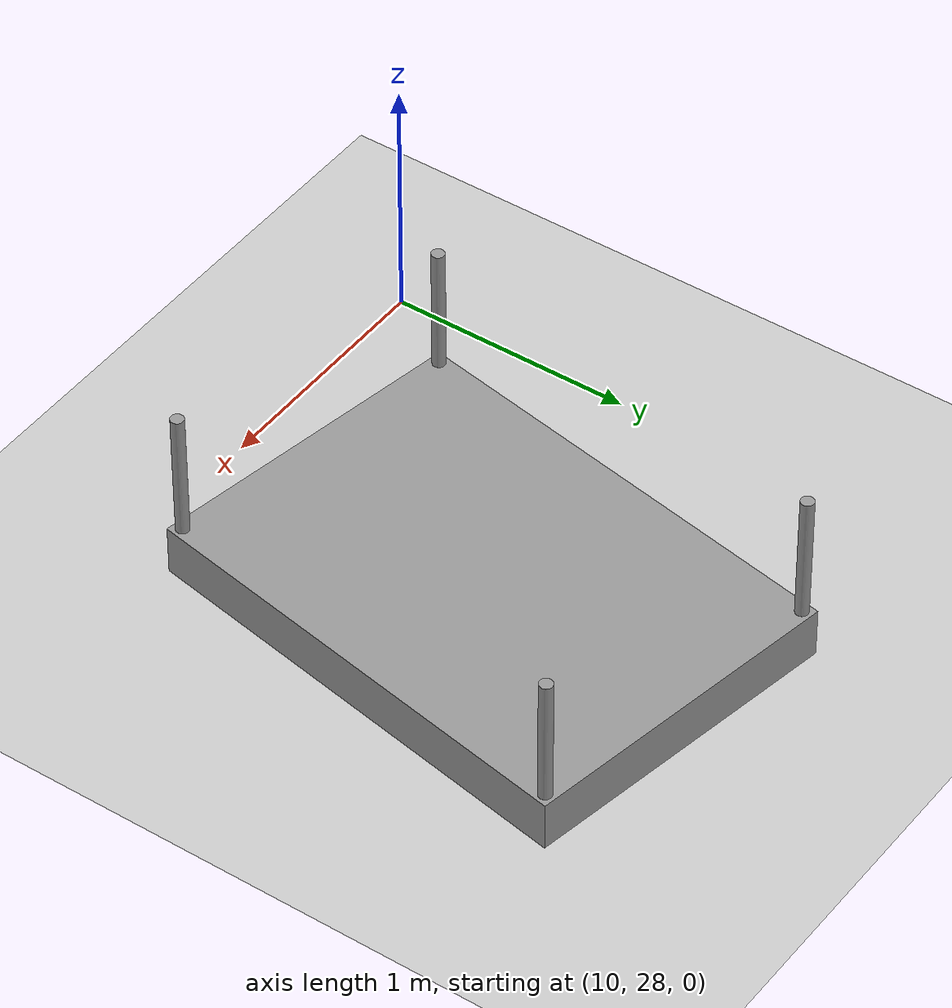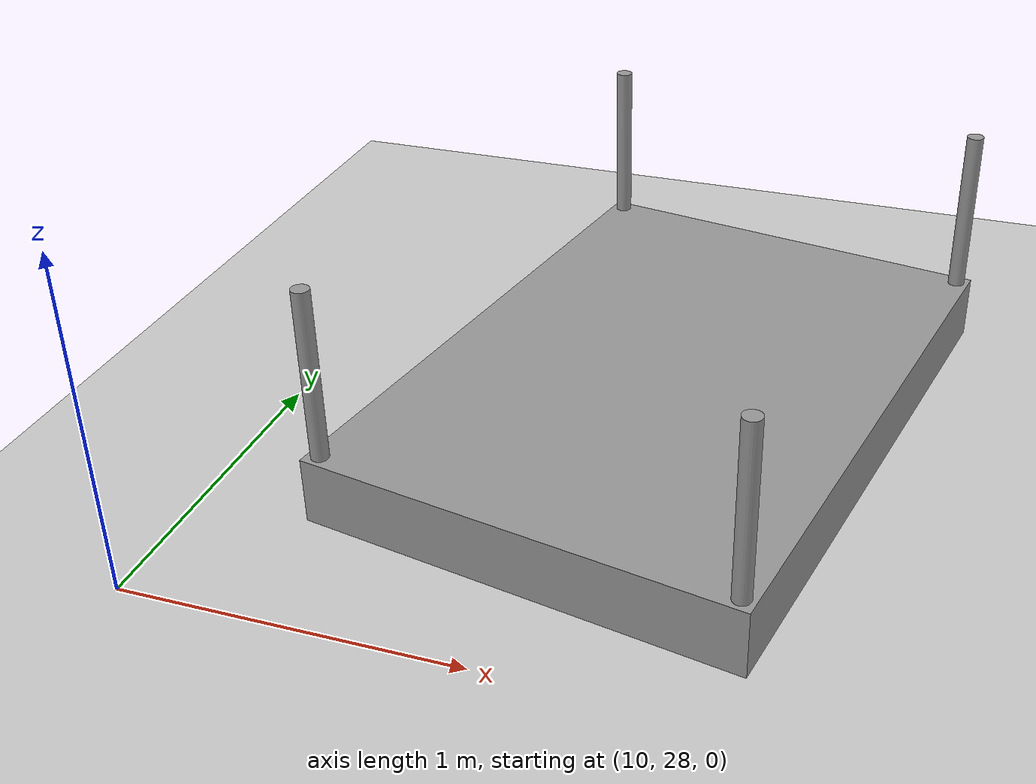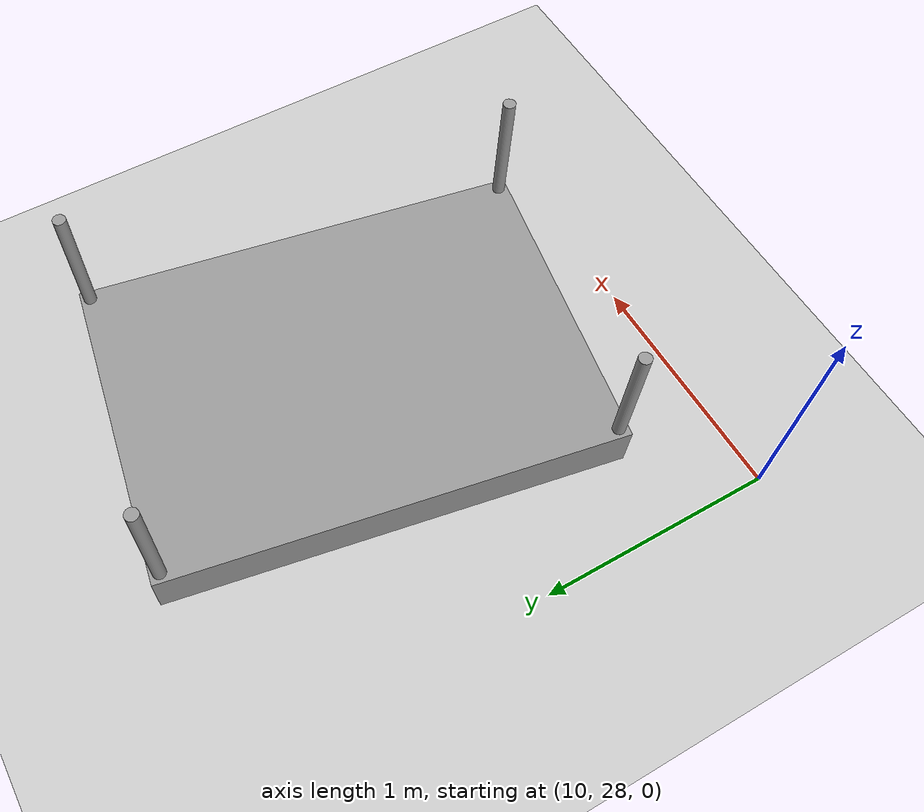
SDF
<sdf version="1.6">
 <world name="default">
  <model name="ground_plane">
   <static>1</static>
   <link name="link">
    <collision name="collision">
     <geometry><plane><normal>0 0 1</normal><size>100 100</size></plane></geometry>
     <surface>
      <contact><collide_bitmask>65535</collide_bitmask></contact>
      <friction><ode><mu>100</mu><mu2>50</mu2></ode></friction>
     </surface>
    </collision>
    <visual name="visual">
     <cast_shadows>0</cast_shadows>
     <geometry><plane><normal>0 0 1</normal><size>100 100</size></plane></geometry>
     <material>
      <script><uri>file://media/materials/scripts/gazebo.material</uri><name>Gazebo/Grey</name></script>
     </material>
    </visual>
   </link>
  </model>
  <model name="bed_clone_1">
   <link name="link_0">
    <pose>-0.152081 0.31625 0.061083 0 -0 0</pose>
    <inertial>
     <mass>1</mass>
     <inertia>
      <ixx>0.166667</ixx>
      <ixy>0</ixy>
      <ixz>0</ixz>
      <iyy>0.166667</iyy>
      <iyz>0</iyz>
      <izz>0.166667</izz>
     </inertia>
    </inertial>
    <visual name="visual">
     <geometry><box><size>1.905 1.345 0.205</size></box></geometry>
     <material>
      <lighting>1</lighting>
      <script><uri>file://media/materials/scripts/gazebo.material</uri><name>Gazebo/Grey</name></script>
      <shader type="pixel"><normal_map>__default__</normal_map></shader>
      <ambient>0.3 0.3 0.3 1</ambient>
      <diffuse>0.7 0.7 0.7 1</diffuse>
      <specular>0.01 0.01 0.01 1</specular>
      <emissive>0 0 0 1</emissive>
     </material>
    </visual>
    <collision name="collision">
     <geometry><box><size>1.905 1.345 0.205</size></box></geometry>
     <surface>
      <friction>
       <ode><mu>1</mu><mu2>1</mu2><fdir1>0 0 0</fdir1><slip1>0</slip1><slip2>0</slip2></ode>
       <torsional>
        <coefficient>1</coefficient>
        <patch_radius>0</patch_radius>
        <surface_radius>0</surface_radius>
        <use_patch_radius>1</use_patch_radius>
        <ode><slip>0</slip></ode>
       </torsional>
      </friction>
      <bounce><restitution_coefficient>0</restitution_coefficient><threshold>1e+06</threshold></bounce>
      <contact>
       <collide_without_contact>0</collide_without_contact>
       <collide_without_contact_bitmask>1</collide_without_contact_bitmask>
       <collide_bitmask>1</collide_bitmask>
       <ode>
        <soft_cfm>0</soft_cfm>
        <soft_erp>0.2</soft_erp>
        <kp>1e+13</kp>
        <kd>1</kd>
        <max_vel>0.01</max_vel>
        <min_depth>0</min_depth>
       </ode>
       <bullet>
        <split_impulse>1</split_impulse>
        <split_impulse_penetration_threshold>-0.01</split_impulse_penetration_threshold>
        <soft_cfm>0</soft_cfm>
        <soft_erp>0.2</soft_erp>
        <kp>1e+13</kp>
        <kd>1</kd>
       </bullet>
      </contact>
     </surface>
    </collision>
   </link>
   <link name="link_1">
    <pose>0.760419 0.94875 -0.305417 0 -0 0</pose>
    <inertial>
     <mass>1</mass>
     <inertia><ixx>0.145833</ixx><ixy>0</ixy><ixz>0</ixz><iyy>0.145833</iyy><iyz>0</iyz><izz>0.125</izz></inertia>
    </inertial>
    <visual name="visual">
     <geometry><cylinder><radius>0.026479</radius><length>0.528</length></cylinder></geometry>
     <material>
      <lighting>1</lighting>
      <script><uri>file://media/materials/scripts/gazebo.material</uri><name>Gazebo/Grey</name></script>
      <shader type="pixel"><normal_map>__default__</normal_map></shader>
      <ambient>0.3 0.3 0.3 1</ambient>
      <diffuse>0.7 0.7 0.7 1</diffuse>
      <specular>0.01 0.01 0.01 1</specular>
      <emissive>0 0 0 1</emissive>
     </material>
    </visual>
    <collision name="collision">
     <geometry><cylinder><radius>0.026479</radius><length>0.528</length></cylinder></geometry>
     <surface>
      <friction>
       <ode><mu>1</mu><mu2>1</mu2><fdir1>0 0 0</fdir1><slip1>0</slip1><slip2>0</slip2></ode>
       <torsional>
        <coefficient>1</coefficient>
        <patch_radius>0</patch_radius>
        <surface_radius>0</surface_radius>
        <use_patch_radius>1</use_patch_radius>
        <ode><slip>0</slip></ode>
       </torsional>
      </friction>
      <bounce><restitution_coefficient>0</restitution_coefficient><threshold>1e+06</threshold></bounce>
      <contact>
       <collide_without_contact>0</collide_without_contact>
       <collide_without_contact_bitmask>1</collide_without_contact_bitmask>
       <collide_bitmask>1</collide_bitmask>
       <ode>
        <soft_cfm>0</soft_cfm>
        <soft_erp>0.2</soft_erp>
        <kp>1e+13</kp>
        <kd>1</kd>
        <max_vel>0.01</max_vel>
        <min_depth>0</min_depth>
       </ode>
       <bullet>
        <split_impulse>1</split_impulse>
        <split_impulse_penetration_threshold>-0.01</split_impulse_penetration_threshold>
        <soft_cfm>0</soft_cfm>
        <soft_erp>0.2</soft_erp>
        <kp>1e+13</kp>
        <kd>1</kd>
       </bullet>
      </contact>
     </surface>
    </collision>
   </link>
   <link name="link_1_clone">
    <pose>0.760419 -0.31625 -0.305417 0 -0 0</pose>
    <inertial>
     <mass>1</mass>
     <inertia><ixx>0.145833</ixx><ixy>0</ixy><ixz>0</ixz><iyy>0.145833</iyy><iyz>0</iyz><izz>0.125</izz></inertia>
    </inertial>
    <visual name="visual">
     <geometry><cylinder><radius>0.026479</radius><length>0.528</length></cylinder></geometry>
     <material>
      <lighting>1</lighting>
      <script><uri>file://media/materials/scripts/gazebo.material</uri><name>Gazebo/Grey</name></script>
      <shader type="pixel"><normal_map>__default__</normal_map></shader>
      <ambient>0.3 0.3 0.3 1</ambient>
      <diffuse>0.7 0.7 0.7 1</diffuse>
      <specular>0.01 0.01 0.01 1</specular>
      <emissive>0 0 0 1</emissive>
     </material>
    </visual>
    <collision name="collision">
     <geometry><cylinder><radius>0.026479</radius><length>0.528</length></cylinder></geometry>
     <surface>
      <friction>
       <ode><mu>1</mu><mu2>1</mu2><fdir1>0 0 0</fdir1><slip1>0</slip1><slip2>0</slip2></ode>
       <torsional>
        <coefficient>1</coefficient>
        <patch_radius>0</patch_radius>
        <surface_radius>0</surface_radius>
        <use_patch_radius>1</use_patch_radius>
        <ode><slip>0</slip></ode>
       </torsional>
      </friction>
      <bounce><restitution_coefficient>0</restitution_coefficient><threshold>1e+06</threshold></bounce>
      <contact>
       <collide_without_contact>0</collide_without_contact>
       <collide_without_contact_bitmask>1</collide_without_contact_bitmask>
       <collide_bitmask>1</collide_bitmask>
       <ode>
        <soft_cfm>0</soft_cfm>
        <soft_erp>0.2</soft_erp>
        <kp>1e+13</kp>
        <kd>1</kd>
        <max_vel>0.01</max_vel>
        <min_depth>0</min_depth>
       </ode>
       <bullet>
        <split_impulse>1</split_impulse>
        <split_impulse_penetration_threshold>-0.01</split_impulse_penetration_threshold>
        <soft_cfm>0</soft_cfm>
        <soft_erp>0.2</soft_erp>
        <kp>1e+13</kp>
        <kd>1</kd>
       </bullet>
      </contact>
     </surface>
    </collision>
   </link>
   <link name="link_1_clone_clone">
    <pose>-1.06458 0.94875 -0.305417 0 -0 0</pose>
    <inertial>
     <mass>1</mass>
     <inertia><ixx>0.145833</ixx><ixy>0</ixy><ixz>0</ixz><iyy>0.145833</iyy><iyz>0</iyz><izz>0.125</izz></inertia>
    </inertial>
    <visual name="visual">
     <geometry><cylinder><radius>0.026479</radius><length>0.528</length></cylinder></geometry>
     <material>
      <lighting>1</lighting>
      <script><uri>file://media/materials/scripts/gazebo.material</uri><name>Gazebo/Grey</name></script>
      <shader type="pixel"><normal_map>__default__</normal_map></shader>
      <ambient>0.3 0.3 0.3 1</ambient>
      <diffuse>0.7 0.7 0.7 1</diffuse>
      <specular>0.01 0.01 0.01 1</specular>
      <emissive>0 0 0 1</emissive>
     </material>
    </visual>
    <collision name="collision">
     <geometry><cylinder><radius>0.026479</radius><length>0.528</length></cylinder></geometry>
     <surface>
      <friction>
       <ode><mu>1</mu><mu2>1</mu2><fdir1>0 0 0</fdir1><slip1>0</slip1><slip2>0</slip2></ode>
       <torsional>
        <coefficient>1</coefficient>
        <patch_radius>0</patch_radius>
        <surface_radius>0</surface_radius>
        <use_patch_radius>1</use_patch_radius>
        <ode><slip>0</slip></ode>
       </torsional>
      </friction>
      <bounce><restitution_coefficient>0</restitution_coefficient><threshold>1e+06</threshold></bounce>
      <contact>
       <collide_without_contact>0</collide_without_contact>
       <collide_without_contact_bitmask>1</collide_without_contact_bitmask>
       <collide_bitmask>1</collide_bitmask>
       <ode>
        <soft_cfm>0</soft_cfm>
        <soft_erp>0.2</soft_erp>
        <kp>1e+13</kp>
        <kd>1</kd>
        <max_vel>0.01</max_vel>
        <min_depth>0</min_depth>
       </ode>
       <bullet>
        <split_impulse>1</split_impulse>
        <split_impulse_penetration_threshold>-0.01</split_impulse_penetration_threshold>
        <soft_cfm>0</soft_cfm>
        <soft_erp>0.2</soft_erp>
        <kp>1e+13</kp>
        <kd>1</kd>
       </bullet>
      </contact>
     </surface>
    </collision>
   </link>
   <link name="link_1_clone_clone_clone">
    <pose>-1.06458 -0.31625 -0.305417 0 -0 0</pose>
    <inertial>
     <mass>1</mass>
     <inertia><ixx>0.145833</ixx><ixy>0</ixy><ixz>0</ixz><iyy>0.145833</iyy><iyz>0</iyz><izz>0.125</izz></inertia>
    </inertial>
    <visual name="visual">
     <geometry><cylinder><radius>0.026479</radius><length>0.528</length></cylinder></geometry>
     <material>
      <lighting>1</lighting>
      <script><uri>file://media/materials/scripts/gazebo.material</uri><name>Gazebo/Grey</name></script>
      <shader type="pixel"><normal_map>__default__</normal_map></shader>
      <ambient>0.3 0.3 0.3 1</ambient>
      <diffuse>0.7 0.7 0.7 1</diffuse>
      <specular>0.01 0.01 0.01 1</specular>
      <emissive>0 0 0 1</emissive>
     </material>
    </visual>
    <collision name="collision">
     <geometry><cylinder><radius>0.026479</radius><length>0.528</length></cylinder></geometry>
     <surface>
      <friction>
       <ode><mu>1</mu><mu2>1</mu2><fdir1>0 0 0</fdir1><slip1>0</slip1><slip2>0</slip2></ode>
       <torsional>
        <coefficient>1</coefficient>
        <patch_radius>0</patch_radius>
        <surface_radius>0</surface_radius>
        <use_patch_radius>1</use_patch_radius>
        <ode><slip>0</slip></ode>
       </torsional>
      </friction>
      <bounce><restitution_coefficient>0</restitution_coefficient><threshold>1e+06</threshold></bounce>
      <contact>
       <collide_without_contact>0</collide_without_contact>
       <collide_without_contact_bitmask>1</collide_without_contact_bitmask>
       <collide_bitmask>1</collide_bitmask>
       <ode>
        <soft_cfm>0</soft_cfm>
        <soft_erp>0.2</soft_erp>
        <kp>1e+13</kp>
        <kd>1</kd>
        <max_vel>0.01</max_vel>
        <min_depth>0</min_depth>
       </ode>
       <bullet>
        <split_impulse>1</split_impulse>
        <split_impulse_penetration_threshold>-0.01</split_impulse_penetration_threshold>
        <soft_cfm>0</soft_cfm>
        <soft_erp>0.2</soft_erp>
        <kp>1e+13</kp>
        <kd>1</kd>
       </bullet>
      </contact>
     </surface>
    </collision>
   </link>
   <joint name="link_0_JOINT_0" type="fixed">
    <parent>link_0</parent>
    <child>link_1</child>
    <physics>
     <ode><limit><cfm>0</cfm><erp>0.2</erp></limit><suspension><cfm>0</cfm><erp>0.2</erp></suspension></ode>
    </physics>
   </joint>
   <joint name="link_0_JOINT_1" type="fixed">
    <parent>link_0</parent>
    <child>link_1_clone</child>
    <physics>
     <ode><limit><cfm>0</cfm><erp>0.2</erp></limit><suspension><cfm>0</cfm><erp>0.2</erp></suspension></ode>
    </physics>
   </joint>
   <joint name="link_0_JOINT_2" type="fixed">
    <parent>link_0</parent>
    <child>link_1_clone_clone</child>
    <physics>
     <ode><limit><cfm>0</cfm><erp>0.2</erp></limit><suspension><cfm>0</cfm><erp>0.2</erp></suspension></ode>
    </physics>
   </joint>
   <joint name="link_0_JOINT_3" type="fixed">
    <parent>link_0</parent>
    <child>link_1_clone_clone_clone</child>
    <pose>-0.01 0 0 0 -0 0</pose>
    <physics>
     <ode><limit><cfm>0</cfm><erp>0.2</erp></limit><suspension><cfm>0</cfm><erp>0.2</erp></suspension></ode>
    </physics>
   </joint>
   <static>0</static>
   <pose>11.455 29.0287 0.163578 3.14159 -0 -1.75094</pose>
  </model>
 </world>
</sdf>
